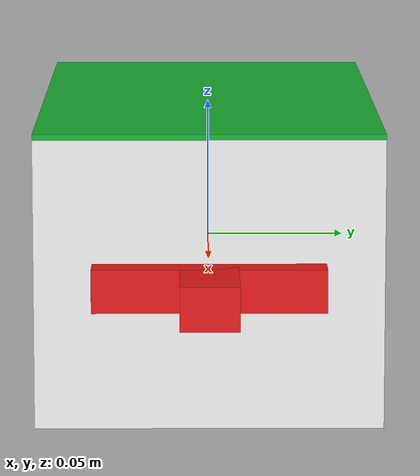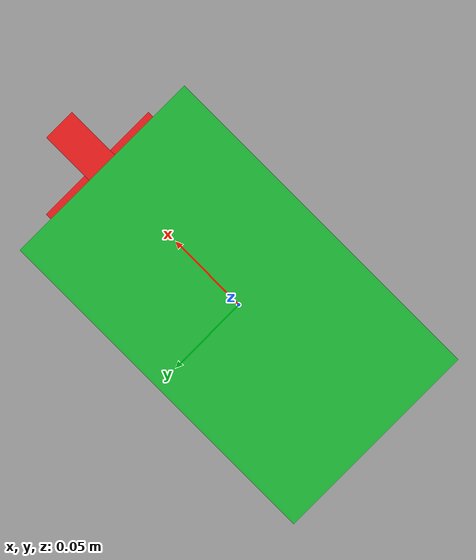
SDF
<?xml version="1.0"?>
<sdf version="1.6">
<model name="medication_box">
  <!-- Boîte de médicaments transportée par le robot -->
  <link name="link">
    <inertial>
      <mass>0.3</mass>
      <inertia>
        <ixx>0.001</ixx><ixy>0</ixy><ixz>0</ixz>
        <iyy>0.001</iyy><iyz>0</iyz>
        <izz>0.001</izz>
      </inertia>
    </inertial>

    <collision name="col">
      <geometry>
        <box><size>0.20 0.12 0.10</size></box>
      </geometry>
    </collision>

    <!-- Corps blanc de la boîte -->
    <visual name="box_body">
      <geometry>
        <box><size>0.20 0.12 0.10</size></box>
      </geometry>
      <material>
        <ambient>0.95 0.95 0.95 1</ambient>
        <diffuse>0.95 0.95 0.95 1</diffuse>
      </material>
    </visual>

    <!-- Croix rouge médicale (face avant) -->
    <visual name="cross_h">
      <pose>0.101 0 0 0 1.5707 0</pose>
      <geometry>
        <box><size>0.015 0.08 0.02</size></box>
      </geometry>
      <material>
        <ambient>0.9 0.1 0.1 1</ambient>
        <diffuse>0.9 0.1 0.1 1</diffuse>
        <emissive>0.3 0 0 1</emissive>
      </material>
    </visual>
    <visual name="cross_v">
      <pose>0.101 0 0 0 1.5707 0</pose>
      <geometry>
        <box><size>0.015 0.02 0.08</size></box>
      </geometry>
      <material>
        <ambient>0.9 0.1 0.1 1</ambient>
        <diffuse>0.9 0.1 0.1 1</diffuse>
        <emissive>0.3 0 0 1</emissive>
      </material>
    </visual>

    <!-- Bord vert (label pharmacie) -->
    <visual name="label_top">
      <pose>0 0 0.051 0 0 0</pose>
      <geometry>
        <box><size>0.20 0.12 0.002</size></box>
      </geometry>
      <material>
        <ambient>0.1 0.7 0.2 1</ambient>
        <diffuse>0.1 0.7 0.2 1</diffuse>
      </material>
    </visual>
  </link>
</model>
</sdf>
